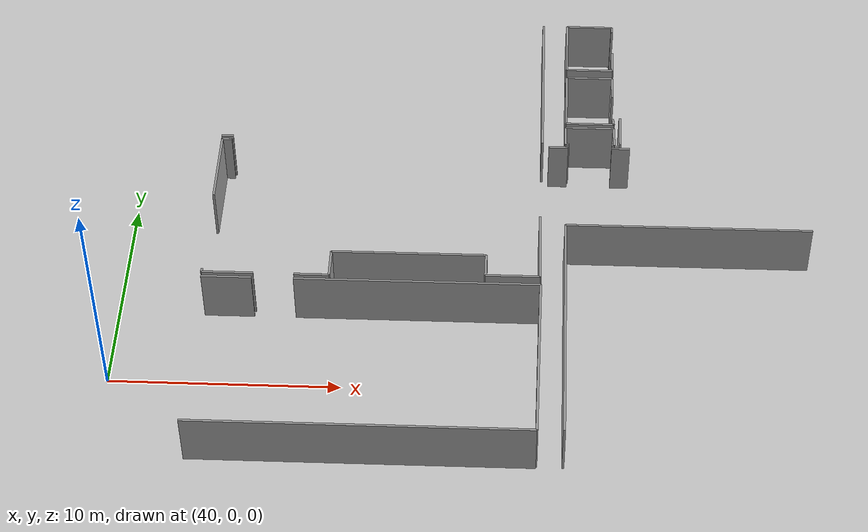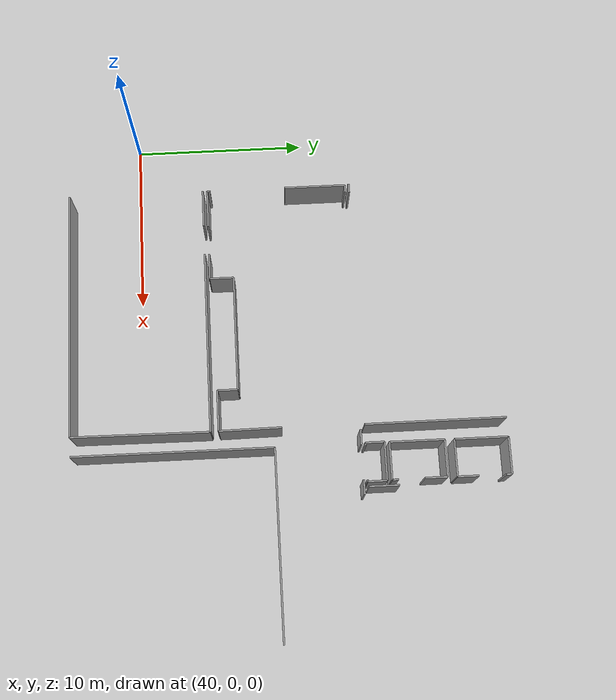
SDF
<sdf version="1.6">
 <world name="default">
  <model name="ground_plane">
   <static>1</static>
   <link name="link">
    <collision name="collision">
     <geometry><plane><normal>0 0 1</normal><size>100 100</size></plane></geometry>
     <surface><friction><ode><mu>100</mu><mu2>50</mu2></ode></friction></surface>
    </collision>
    <visual name="visual">
     <cast_shadows>0</cast_shadows>
     <geometry><plane><normal>0 0 1</normal><size>100 100</size></plane></geometry>
     <material>
      <script><uri>file://media/materials/scripts/gazebo.material</uri><name>Gazebo/Grey</name></script>
     </material>
    </visual>
   </link>
  </model>
  <model name="50037764_PLAN1">
   <static>1</static>
   <link name="Wall_341">
    <collision name="Wall_341_Collision">
     <geometry><box><size>2.36641415425 0.1 2.5</size></box></geometry>
     <pose>1.18320707713 0 1.25 0 0 0</pose>
    </collision>
    <visual name="Wall_341_Visual">
     <pose>1.18320707713 0 1.25 0 0 0</pose>
     <geometry><box><size>2.36641415425 0.1 2.5</size></box></geometry>
     <material>
      <script><uri>file://media/materials/scripts/gazebo.material</uri><name>Gazebo/Grey</name></script>
      <ambient>1 1 1 1</ambient>
     </material>
    </visual>
    <pose>193.475519854 -16.4067822462 0 0 0 3.14159265359</pose>
   </link>
   <link name="Wall_342">
    <collision name="Wall_342_Collision">
     <geometry><box><size>1.1791906045 0.1 2.5</size></box></geometry>
     <pose>0.589595302252 0 1.25 0 0 0</pose>
    </collision>
    <visual name="Wall_342_Visual">
     <pose>0.589595302252 0 1.25 0 0 0</pose>
     <geometry><box><size>1.1791906045 0.1 2.5</size></box></geometry>
     <material>
      <script><uri>file://media/materials/scripts/gazebo.material</uri><name>Gazebo/Grey</name></script>
      <ambient>1 1 1 1</ambient>
     </material>
    </visual>
    <pose>191.109105699 -16.4067822462 0 0 0 1.57079632679</pose>
   </link>
   <link name="Wall_343">
    <collision name="Wall_343_Collision">
     <geometry><box><size>6.7469113834 0.1 2.5</size></box></geometry>
     <pose>3.3734556917 0 1.25 0 0 0</pose>
    </collision>
    <visual name="Wall_343_Visual">
     <pose>3.3734556917 0 1.25 0 0 0</pose>
     <geometry><box><size>6.7469113834 0.1 2.5</size></box></geometry>
     <material>
      <script><uri>file://media/materials/scripts/gazebo.material</uri><name>Gazebo/Grey</name></script>
      <ambient>1 1 1 1</ambient>
     </material>
    </visual>
    <pose>191.109105699 -15.2275916417 0 0 0 3.14159265359</pose>
   </link>
   <link name="Wall_344">
    <collision name="Wall_344_Collision">
     <geometry><box><size>1.38570847527 0.1 2.5</size></box></geometry>
     <pose>0.692854237633 0 1.25 0 0 0</pose>
    </collision>
    <visual name="Wall_344_Visual">
     <pose>0.692854237633 0 1.25 0 0 0</pose>
     <geometry><box><size>1.38570847527 0.1 2.5</size></box></geometry>
     <material>
      <script><uri>file://media/materials/scripts/gazebo.material</uri><name>Gazebo/Grey</name></script>
      <ambient>1 1 1 1</ambient>
     </material>
    </visual>
    <pose>184.362194316 -15.2275916417 0 0 0 -1.57079632679</pose>
   </link>
   <link name="Wall_345">
    <collision name="Wall_345_Collision">
     <geometry><box><size>1.52905587473 0.1 2.5</size></box></geometry>
     <pose>0.764527937363 0 1.25 0 0 0</pose>
    </collision>
    <visual name="Wall_345_Visual">
     <pose>0.764527937363 0 1.25 0 0 0</pose>
     <geometry><box><size>1.52905587473 0.1 2.5</size></box></geometry>
     <material>
      <script><uri>file://media/materials/scripts/gazebo.material</uri><name>Gazebo/Grey</name></script>
      <ambient>1 1 1 1</ambient>
     </material>
    </visual>
    <pose>184.362194316 -16.6133001169 0 0 0 3.14159265359</pose>
   </link>
   <link name="Wall_346">
    <collision name="Wall_346_Collision">
     <geometry><box><size>2.23092175505 0.1 2.5</size></box></geometry>
     <pose>1.11546087752 0 1.25 0 0 0</pose>
    </collision>
    <visual name="Wall_346_Visual">
     <pose>1.11546087752 0 1.25 0 0 0</pose>
     <geometry><box><size>2.23092175505 0.1 2.5</size></box></geometry>
     <material>
      <script><uri>file://media/materials/scripts/gazebo.material</uri><name>Gazebo/Grey</name></script>
      <ambient>1 1 1 1</ambient>
     </material>
    </visual>
    <pose>181.078600844 -16.6133001169 0 0 0 3.14159265359</pose>
   </link>
   <link name="Wall_347">
    <collision name="Wall_347_Collision">
     <geometry><box><size>0.191138339519 0.1 2.5</size></box></geometry>
     <pose>0.0955691697595 0 1.25 0 0 0</pose>
    </collision>
    <visual name="Wall_347_Visual">
     <pose>0.0955691697595 0 1.25 0 0 0</pose>
     <geometry><box><size>0.191138339519 0.1 2.5</size></box></geometry>
     <material>
      <script><uri>file://media/materials/scripts/gazebo.material</uri><name>Gazebo/Grey</name></script>
      <ambient>1 1 1 1</ambient>
     </material>
    </visual>
    <pose>178.847679089 -16.6133001169 0 0 0 1.57079632679</pose>
   </link>
   <link name="Wall_348">
    <collision name="Wall_348_Collision">
     <geometry><box><size>3.60318267324 0.1 2.5</size></box></geometry>
     <pose>1.80159133662 0 1.25 0 0 0</pose>
    </collision>
    <visual name="Wall_348_Visual">
     <pose>1.80159133662 0 1.25 0 0 0</pose>
     <geometry><box><size>3.60318267324 0.1 2.5</size></box></geometry>
     <material>
      <script><uri>file://media/materials/scripts/gazebo.material</uri><name>Gazebo/Grey</name></script>
      <ambient>1 1 1 1</ambient>
     </material>
    </visual>
    <pose>178.847679089 -11.9596064874 0 0 0 1.57079632679</pose>
   </link>
   <link name="Wall_349">
    <collision name="Wall_349_Collision">
     <geometry><box><size>0.440032538512 0.1 2.5</size></box></geometry>
     <pose>0.220016269256 0 1.25 0 0 0</pose>
    </collision>
    <visual name="Wall_349_Visual">
     <pose>0.220016269256 0 1.25 0 0 0</pose>
     <geometry><box><size>0.440032538512 0.1 2.5</size></box></geometry>
     <material>
      <script><uri>file://media/materials/scripts/gazebo.material</uri><name>Gazebo/Grey</name></script>
      <ambient>1 1 1 1</ambient>
     </material>
    </visual>
    <pose>178.847679089 -8.35642381412 0 0 0 0.0</pose>
   </link>
   <link name="Wall_350">
    <collision name="Wall_350_Collision">
     <geometry><box><size>3.58962321013 0.1 2.5</size></box></geometry>
     <pose>1.79481160507 0 1.25 0 0 0</pose>
    </collision>
    <visual name="Wall_350_Visual">
     <pose>1.79481160507 0 1.25 0 0 0</pose>
     <geometry><box><size>3.58962321013 0.1 2.5</size></box></geometry>
     <material>
      <script><uri>file://media/materials/scripts/gazebo.material</uri><name>Gazebo/Grey</name></script>
      <ambient>1 1 1 1</ambient>
     </material>
    </visual>
    <pose>193.43154202 -12.8174284407 0 0 0 -1.55854464165</pose>
   </link>
   <link name="Wall_351">
    <collision name="Wall_351_Collision">
     <geometry><box><size>0.534851797244 0.1 2.5</size></box></geometry>
     <pose>0.267425898622 0 1.25 0 0 0</pose>
    </collision>
    <visual name="Wall_351_Visual">
     <pose>0.267425898622 0 1.25 0 0 0</pose>
     <geometry><box><size>0.534851797244 0.1 2.5</size></box></geometry>
     <material>
      <script><uri>file://media/materials/scripts/gazebo.material</uri><name>Gazebo/Grey</name></script>
      <ambient>1 1 1 1</ambient>
     </material>
    </visual>
    <pose>179.330164218 -8.12471401698 0 0 0 3.14159265359</pose>
   </link>
   <link name="Wall_354">
    <collision name="Wall_354_Collision">
     <geometry><box><size>8.08050943751 0.1 2.5</size></box></geometry>
     <pose>4.04025471875 0 1.25 0 0 0</pose>
    </collision>
    <visual name="Wall_354_Visual">
     <pose>4.04025471875 0 1.25 0 0 0</pose>
     <geometry><box><size>8.08050943751 0.1 2.5</size></box></geometry>
     <material>
      <script><uri>file://media/materials/scripts/gazebo.material</uri><name>Gazebo/Grey</name></script>
      <ambient>1 1 1 1</ambient>
     </material>
    </visual>
    <pose>193.443743963 -0.0442574609792 0 0 0 -1.56717850001</pose>
   </link>
   <link name="Wall_355">
    <collision name="Wall_355_Collision">
     <geometry><box><size>14.6057247445 0.1 2.5</size></box></geometry>
     <pose>7.30286237226 0 1.25 0 0 0</pose>
    </collision>
    <visual name="Wall_355_Visual">
     <pose>7.30286237226 0 1.25 0 0 0</pose>
     <geometry><box><size>14.6057247445 0.1 2.5</size></box></geometry>
     <material>
      <script><uri>file://media/materials/scripts/gazebo.material</uri><name>Gazebo/Grey</name></script>
      <ambient>1 1 1 1</ambient>
     </material>
    </visual>
    <pose>193.442472927 -24.8404850272 0 0 0 3.14159265359</pose>
   </link>
   <link name="Wall_359">
    <collision name="Wall_359_Collision">
     <geometry><box><size>2.18745233616 0.1 2.5</size></box></geometry>
     <pose>1.09372616808 0 1.25 0 0 0</pose>
    </collision>
    <visual name="Wall_359_Visual">
     <pose>1.09372616808 0 1.25 0 0 0</pose>
     <geometry><box><size>2.18745233616 0.1 2.5</size></box></geometry>
     <material>
      <script><uri>file://media/materials/scripts/gazebo.material</uri><name>Gazebo/Grey</name></script>
      <ambient>1 1 1 1</ambient>
     </material>
    </visual>
    <pose>178.836748182 -16.8721592353 0 0 0 0.0</pose>
   </link>
   <link name="Wall_360">
    <collision name="Wall_360_Collision">
     <geometry><box><size>10.6604301185 0.1 2.5</size></box></geometry>
     <pose>5.33021505923 0 1.25 0 0 0</pose>
    </collision>
    <visual name="Wall_360_Visual">
     <pose>5.33021505923 0 1.25 0 0 0</pose>
     <geometry><box><size>10.6604301185 0.1 2.5</size></box></geometry>
     <material>
      <script><uri>file://media/materials/scripts/gazebo.material</uri><name>Gazebo/Grey</name></script>
      <ambient>1 1 1 1</ambient>
     </material>
    </visual>
    <pose>182.836951548 -16.8721592353 0 0 0 0.0</pose>
   </link>
   <link name="Wall_361">
    <collision name="Wall_361_Collision">
     <geometry><box><size>7.96851497425 0.1 2.5</size></box></geometry>
     <pose>3.98425748712 0 1.25 0 0 0</pose>
    </collision>
    <visual name="Wall_361_Visual">
     <pose>3.98425748712 0 1.25 0 0 0</pose>
     <geometry><box><size>7.96851497425 0.1 2.5</size></box></geometry>
     <material>
      <script><uri>file://media/materials/scripts/gazebo.material</uri><name>Gazebo/Grey</name></script>
      <ambient>1 1 1 1</ambient>
     </material>
    </visual>
    <pose>193.497381667 -16.8721592353 0 0 0 -1.57768709306</pose>
   </link>
   <link name="Wall_373">
    <collision name="Wall_373_Collision">
     <geometry><box><size>0.874472520209 0.1 2.5</size></box></geometry>
     <pose>0.437236260105 0 1.25 0 0 0</pose>
    </collision>
    <visual name="Wall_373_Visual">
     <pose>0.437236260105 0 1.25 0 0 0</pose>
     <geometry><box><size>0.874472520209 0.1 2.5</size></box></geometry>
     <material>
      <script><uri>file://media/materials/scripts/gazebo.material</uri><name>Gazebo/Grey</name></script>
      <ambient>1 1 1 1</ambient>
     </material>
    </visual>
    <pose>193.761248665 -8.37180334537 0 0 0 0.0</pose>
   </link>
   <link name="Wall_374">
    <collision name="Wall_374_Collision">
     <geometry><box><size>0.831003101327 0.1 2.5</size></box></geometry>
     <pose>0.415501550663 0 1.25 0 0 0</pose>
    </collision>
    <visual name="Wall_374_Visual">
     <pose>0.415501550663 0 1.25 0 0 0</pose>
     <geometry><box><size>0.831003101327 0.1 2.5</size></box></geometry>
     <material>
      <script><uri>file://media/materials/scripts/gazebo.material</uri><name>Gazebo/Grey</name></script>
      <ambient>1 1 1 1</ambient>
     </material>
    </visual>
    <pose>196.619299405 -8.37180334537 0 0 0 0.0</pose>
   </link>
   <link name="Wall_380">
    <collision name="Wall_380_Collision">
     <geometry><box><size>0.116172657481 0.1 2.5</size></box></geometry>
     <pose>0.0580863287407 0 1.25 0 0 0</pose>
    </collision>
    <visual name="Wall_380_Visual">
     <pose>0.0580863287407 0 1.25 0 0 0</pose>
     <geometry><box><size>0.116172657481 0.1 2.5</size></box></geometry>
     <material>
      <script><uri>file://media/materials/scripts/gazebo.material</uri><name>Gazebo/Grey</name></script>
      <ambient>1 1 1 1</ambient>
     </material>
    </visual>
    <pose>196.746657176 -8.14657582999 0 0 0 3.14159265359</pose>
   </link>
   <link name="Wall_381">
    <collision name="Wall_381_Collision">
     <geometry><box><size>0.159896283492 0.1 2.5</size></box></geometry>
     <pose>0.0799481417459 0 1.25 0 0 0</pose>
    </collision>
    <visual name="Wall_381_Visual">
     <pose>0.0799481417459 0 1.25 0 0 0</pose>
     <geometry><box><size>0.159896283492 0.1 2.5</size></box></geometry>
     <material>
      <script><uri>file://media/materials/scripts/gazebo.material</uri><name>Gazebo/Grey</name></script>
      <ambient>1 1 1 1</ambient>
     </material>
    </visual>
    <pose>194.693680411 -8.14657582999 0 0 0 3.14159265359</pose>
   </link>
   <link name="Wall_382">
    <collision name="Wall_382_Collision">
     <geometry><box><size>1.08287152372 0.1 2.5</size></box></geometry>
     <pose>0.541435761859 0 1.25 0 0 0</pose>
    </collision>
    <visual name="Wall_382_Visual">
     <pose>0.541435761859 0 1.25 0 0 0</pose>
     <geometry><box><size>1.08287152372 0.1 2.5</size></box></geometry>
     <material>
      <script><uri>file://media/materials/scripts/gazebo.material</uri><name>Gazebo/Grey</name></script>
      <ambient>1 1 1 1</ambient>
     </material>
    </visual>
    <pose>194.533784127 -8.14657582999 0 0 0 1.57079632679</pose>
   </link>
   <link name="Wall_383">
    <collision name="Wall_383_Collision">
     <geometry><box><size>2.19482434287 0.1 2.5</size></box></geometry>
     <pose>1.09741217144 0 1.25 0 0 0</pose>
    </collision>
    <visual name="Wall_383_Visual">
     <pose>1.09741217144 0 1.25 0 0 0</pose>
     <geometry><box><size>2.19482434287 0.1 2.5</size></box></geometry>
     <material>
      <script><uri>file://media/materials/scripts/gazebo.material</uri><name>Gazebo/Grey</name></script>
      <ambient>1 1 1 1</ambient>
     </material>
    </visual>
    <pose>194.533784127 -7.06370430627 0 0 0 0.0</pose>
   </link>
   <link name="Wall_384">
    <collision name="Wall_384_Collision">
     <geometry><box><size>1.08302192622 0.1 2.5</size></box></geometry>
     <pose>0.541510963109 0 1.25 0 0 0</pose>
    </collision>
    <visual name="Wall_384_Visual">
     <pose>0.541510963109 0 1.25 0 0 0</pose>
     <geometry><box><size>1.08302192622 0.1 2.5</size></box></geometry>
     <material>
      <script><uri>file://media/materials/scripts/gazebo.material</uri><name>Gazebo/Grey</name></script>
      <ambient>1 1 1 1</ambient>
     </material>
    </visual>
    <pose>196.72860847 -7.06370430627 0 0 0 -1.55413042079</pose>
   </link>
   <link name="Wall_387">
    <collision name="Wall_387_Collision">
     <geometry><box><size>1.72207534699 0.1 2.5</size></box></geometry>
     <pose>0.861037673496 0 1.25 0 0 0</pose>
    </collision>
    <visual name="Wall_387_Visual">
     <pose>0.861037673496 0 1.25 0 0 0</pose>
     <geometry><box><size>1.72207534699 0.1 2.5</size></box></geometry>
     <material>
      <script><uri>file://media/materials/scripts/gazebo.material</uri><name>Gazebo/Grey</name></script>
      <ambient>1 1 1 1</ambient>
     </material>
    </visual>
    <pose>197.019167217 -8.10267425899 0 0 0 1.57079632679</pose>
   </link>
   <link name="Wall_392">
    <collision name="Wall_392_Collision">
     <geometry><box><size>2.13559408206 0.1 2.5</size></box></geometry>
     <pose>1.06779704103 0 1.25 0 0 0</pose>
    </collision>
    <visual name="Wall_392_Visual">
     <pose>1.06779704103 0 1.25 0 0 0</pose>
     <geometry><box><size>2.13559408206 0.1 2.5</size></box></geometry>
     <material>
      <script><uri>file://media/materials/scripts/gazebo.material</uri><name>Gazebo/Grey</name></script>
      <ambient>1 1 1 1</ambient>
     </material>
    </visual>
    <pose>196.705221414 -3.11068178352 0 0 0 3.14159265359</pose>
   </link>
   <link name="Wall_393">
    <collision name="Wall_393_Collision">
     <geometry><box><size>3.068330876 0.1 2.5</size></box></geometry>
     <pose>1.534165438 0 1.25 0 0 0</pose>
    </collision>
    <visual name="Wall_393_Visual">
     <pose>1.534165438 0 1.25 0 0 0</pose>
     <geometry><box><size>3.068330876 0.1 2.5</size></box></geometry>
     <material>
      <script><uri>file://media/materials/scripts/gazebo.material</uri><name>Gazebo/Grey</name></script>
      <ambient>1 1 1 1</ambient>
     </material>
    </visual>
    <pose>194.569627332 -3.11068178352 0 0 0 1.57079632679</pose>
   </link>
   <link name="Wall_394">
    <collision name="Wall_394_Collision">
     <geometry><box><size>2.13839036047 0.1 2.5</size></box></geometry>
     <pose>1.06919518023 0 1.25 0 0 0</pose>
    </collision>
    <visual name="Wall_394_Visual">
     <pose>1.06919518023 0 1.25 0 0 0</pose>
     <geometry><box><size>2.13839036047 0.1 2.5</size></box></geometry>
     <material>
      <script><uri>file://media/materials/scripts/gazebo.material</uri><name>Gazebo/Grey</name></script>
      <ambient>1 1 1 1</ambient>
     </material>
    </visual>
    <pose>194.569627332 -0.0423509075194 0 0 0 0.0</pose>
   </link>
   <link name="Wall_395">
    <collision name="Wall_395_Collision">
     <geometry><box><size>0.333011337638 0.1 2.5</size></box></geometry>
     <pose>0.166505668819 0 1.25 0 0 0</pose>
    </collision>
    <visual name="Wall_395_Visual">
     <pose>0.166505668819 0 1.25 0 0 0</pose>
     <geometry><box><size>0.333011337638 0.1 2.5</size></box></geometry>
     <material>
      <script><uri>file://media/materials/scripts/gazebo.material</uri><name>Gazebo/Grey</name></script>
      <ambient>1 1 1 1</ambient>
     </material>
    </visual>
    <pose>196.708017693 -0.0423509075194 0 0 0 -1.57079632679</pose>
   </link>
   <link name="Wall_396">
    <collision name="Wall_396_Collision">
     <geometry><box><size>1.21300337559 0.1 2.5</size></box></geometry>
     <pose>0.606501687796 0 1.25 0 0 0</pose>
    </collision>
    <visual name="Wall_396_Visual">
     <pose>0.606501687796 0 1.25 0 0 0</pose>
     <geometry><box><size>1.21300337559 0.1 2.5</size></box></geometry>
     <material>
      <script><uri>file://media/materials/scripts/gazebo.material</uri><name>Gazebo/Grey</name></script>
      <ambient>1 1 1 1</ambient>
     </material>
    </visual>
    <pose>196.708017693 -1.89768163099 0 0 0 -1.5731015808</pose>
   </link>
   <link name="Wall_397">
    <collision name="Wall_397_Collision">
     <geometry><box><size>2.16940363008 0.1 2.5</size></box></geometry>
     <pose>1.08470181504 0 1.25 0 0 0</pose>
    </collision>
    <visual name="Wall_397_Visual">
     <pose>1.08470181504 0 1.25 0 0 0</pose>
     <geometry><box><size>2.16940363008 0.1 2.5</size></box></geometry>
     <material>
      <script><uri>file://media/materials/scripts/gazebo.material</uri><name>Gazebo/Grey</name></script>
      <ambient>1 1 1 1</ambient>
     </material>
    </visual>
    <pose>196.72860847 -6.78913518735 0 0 0 3.14159265359</pose>
   </link>
   <link name="Wall_398">
    <collision name="Wall_398_Collision">
     <geometry><box><size>3.12240073212 0.1 2.5</size></box></geometry>
     <pose>1.56120036606 0 1.25 0 0 0</pose>
    </collision>
    <visual name="Wall_398_Visual">
     <pose>1.56120036606 0 1.25 0 0 0</pose>
     <geometry><box><size>3.12240073212 0.1 2.5</size></box></geometry>
     <material>
      <script><uri>file://media/materials/scripts/gazebo.material</uri><name>Gazebo/Grey</name></script>
      <ambient>1 1 1 1</ambient>
     </material>
    </visual>
    <pose>194.55920484 -6.78913518735 0 0 0 1.57079632679</pose>
   </link>
   <link name="Wall_399">
    <collision name="Wall_399_Collision">
     <geometry><box><size>2.13228938939 0.1 2.5</size></box></geometry>
     <pose>1.0661446947 0 1.25 0 0 0</pose>
    </collision>
    <visual name="Wall_399_Visual">
     <pose>1.0661446947 0 1.25 0 0 0</pose>
     <geometry><box><size>2.13228938939 0.1 2.5</size></box></geometry>
     <material>
      <script><uri>file://media/materials/scripts/gazebo.material</uri><name>Gazebo/Grey</name></script>
      <ambient>1 1 1 1</ambient>
     </material>
    </visual>
    <pose>194.55920484 -3.66673445523 0 0 0 0.0</pose>
   </link>
   <link name="Wall_400">
    <collision name="Wall_400_Collision">
     <geometry><box><size>1.27901774366 0.1 2.5</size></box></geometry>
     <pose>0.639508871829 0 1.25 0 0 0</pose>
    </collision>
    <visual name="Wall_400_Visual">
     <pose>0.639508871829 0 1.25 0 0 0</pose>
     <geometry><box><size>1.27901774366 0.1 2.5</size></box></geometry>
     <material>
      <script><uri>file://media/materials/scripts/gazebo.material</uri><name>Gazebo/Grey</name></script>
      <ambient>1 1 1 1</ambient>
     </material>
    </visual>
    <pose>196.691494229 -3.66673445523 0 0 0 -1.57079632679</pose>
   </link>
   <link name="Wall_401">
    <collision name="Wall_401_Collision">
     <geometry><box><size>0.366822150525 0.1 2.5</size></box></geometry>
     <pose>0.183411075263 0 1.25 0 0 0</pose>
    </collision>
    <visual name="Wall_401_Visual">
     <pose>0.183411075263 0 1.25 0 0 0</pose>
     <geometry><box><size>0.366822150525 0.1 2.5</size></box></geometry>
     <material>
      <script><uri>file://media/materials/scripts/gazebo.material</uri><name>Gazebo/Grey</name></script>
      <ambient>1 1 1 1</ambient>
     </material>
    </visual>
    <pose>196.691494229 -6.42419543444 0 0 0 -1.46944514934</pose>
   </link>
   <link name="Wall_426">
    <collision name="Wall_426_Collision">
     <geometry><box><size>11.5686359246 0.1 2.5</size></box></geometry>
     <pose>5.78431796228 0 1.25 0 0 0</pose>
    </collision>
    <visual name="Wall_426_Visual">
     <pose>5.78431796228 0 1.25 0 0 0</pose>
     <geometry><box><size>11.5686359246 0.1 2.5</size></box></geometry>
     <material>
      <script><uri>file://media/materials/scripts/gazebo.material</uri><name>Gazebo/Grey</name></script>
      <ambient>1 1 1 1</ambient>
     </material>
    </visual>
    <pose>194.562255326 -24.838197163 0 0 0 1.57079632679</pose>
   </link>
   <link name="Wall_427">
    <collision name="Wall_427_Collision">
     <geometry><box><size>10.8426966292 0.1 2.5</size></box></geometry>
     <pose>5.42134831461 0 1.25 0 0 0</pose>
    </collision>
    <visual name="Wall_427_Visual">
     <pose>5.42134831461 0 1.25 0 0 0</pose>
     <geometry><box><size>10.8426966292 0.1 2.5</size></box></geometry>
     <material>
      <script><uri>file://media/materials/scripts/gazebo.material</uri><name>Gazebo/Grey</name></script>
      <ambient>1 1 1 1</ambient>
     </material>
    </visual>
    <pose>194.562255326 -13.2695612385 0 0 0 0.0</pose>
   </link>
   <pose>-135.1 20.8410341146 0 0 0 0</pose>
  </model>
 </world>
</sdf>
